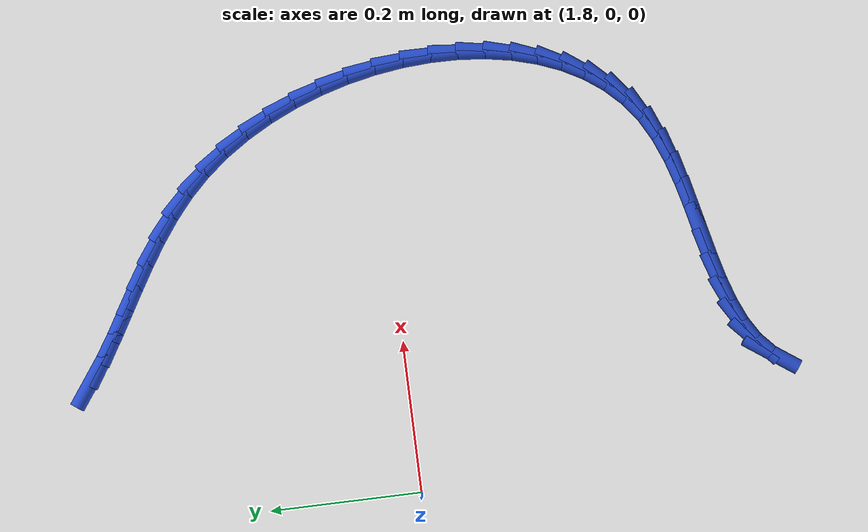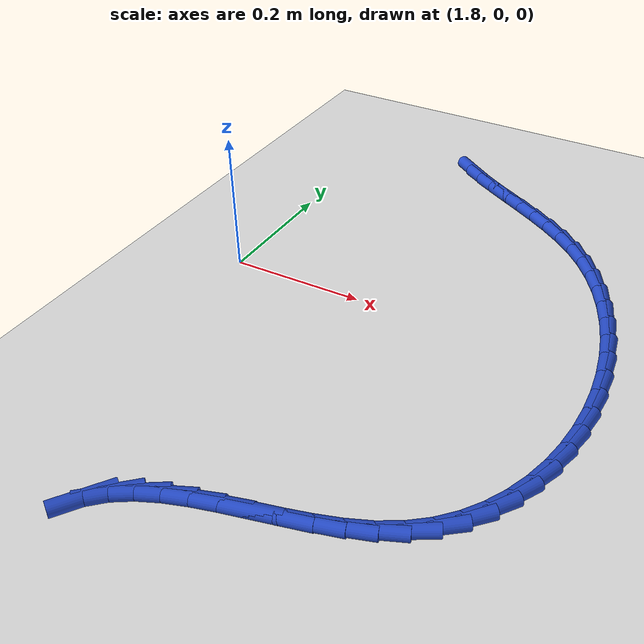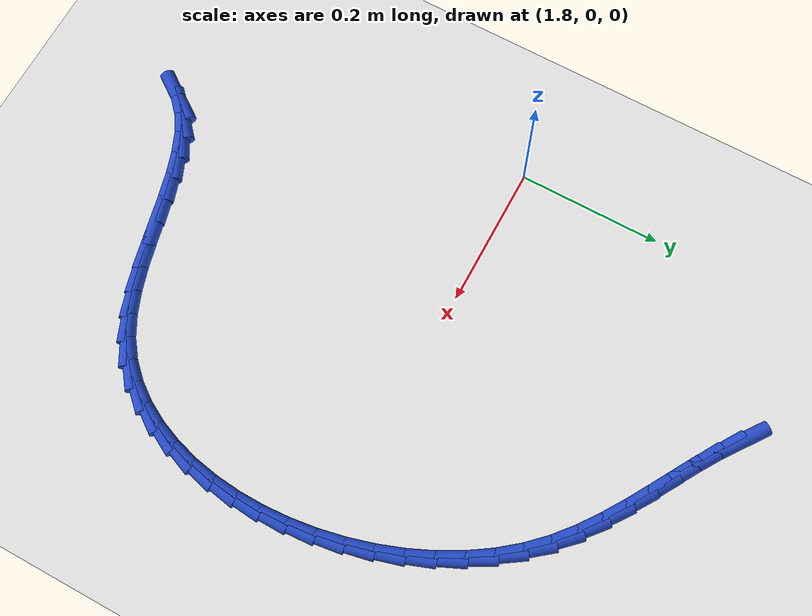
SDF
<sdf version="1.6">
 <world name="default">
  <model name="ground_plane">
   <static>1</static>
   <link name="link">
    <collision name="collision">
     <geometry><plane><normal>0 0 1</normal><size>100 100</size></plane></geometry>
     <surface><friction><ode><mu>100</mu><mu2>50</mu2></ode></friction></surface>
    </collision>
    <visual name="visual">
     <cast_shadows>0</cast_shadows>
     <geometry><plane><normal>0 0 1</normal><size>100 100</size></plane></geometry>
     <material>
      <script><uri>file://media/materials/scripts/gazebo.material</uri><name>Gazebo/WhiteGlow</name></script>
     </material>
    </visual>
   </link>
  </model>
  <model name="line">
   <link name="link_97">
    <pose>1.9995929350206556 0.4103591498873001 0.01 0 1.57 -0.6246618386399072</pose>
    <collision name="collision">
     <geometry><cylinder><radius>0.01</radius><length>0.08</length></cylinder></geometry>
    </collision>
    <visual name="visual">
     <material>
      <script><name>Gazebo/Blue</name><uri>file://media/materials/scripts/gazebo.material</uri></script>
     </material>
     <geometry><cylinder><radius>0.01</radius><length>0.08</length></cylinder></geometry>
    </visual>
   </link>
   <link name="link_98">
    <pose>2.0254250936199756 0.3917349287222821 0.01 0 1.57 -0.5689603426993792</pose>
    <collision name="collision">
     <geometry><cylinder><radius>0.01</radius><length>0.08</length></cylinder></geometry>
    </collision>
    <visual name="visual">
     <material>
      <script><name>Gazebo/Blue</name><uri>file://media/materials/scripts/gazebo.material</uri></script>
     </material>
     <geometry><cylinder><radius>0.01</radius><length>0.08</length></cylinder></geometry>
    </visual>
   </link>
   <link name="link_99">
    <pose>2.0531141852114367 0.37402767885989463 0.01 0 1.57 -0.5382901547867385</pose>
    <collision name="collision">
     <geometry><cylinder><radius>0.01</radius><length>0.08</length></cylinder></geometry>
    </collision>
    <visual name="visual">
     <material>
      <script><name>Gazebo/Blue</name><uri>file://media/materials/scripts/gazebo.material</uri></script>
     </material>
     <geometry><cylinder><radius>0.01</radius><length>0.08</length></cylinder></geometry>
    </visual>
   </link>
   <link name="link_100">
    <pose>2.082105095258075 0.3567169808959366 0.01 0 1.57 -0.5302701069086501</pose>
    <collision name="collision">
     <geometry><cylinder><radius>0.01</radius><length>0.08</length></cylinder></geometry>
    </collision>
    <visual name="visual">
     <material>
      <script><name>Gazebo/Blue</name><uri>file://media/materials/scripts/gazebo.material</uri></script>
     </material>
     <geometry><cylinder><radius>0.01</radius><length>0.08</length></cylinder></geometry>
    </visual>
   </link>
   <link name="link_101">
    <pose>2.111842709222932 0.3392824154262064 0.01 0 1.57 -0.5433949878678274</pose>
    <collision name="collision">
     <geometry><cylinder><radius>0.01</radius><length>0.08</length></cylinder></geometry>
    </collision>
    <visual name="visual">
     <material>
      <script><name>Gazebo/Blue</name><uri>file://media/materials/scripts/gazebo.material</uri></script>
     </material>
     <geometry><cylinder><radius>0.01</radius><length>0.08</length></cylinder></geometry>
    </visual>
   </link>
   <link name="link_102">
    <pose>2.141771912569044 0.3212035630465031 0.01 0 1.57 -0.5769900390581039</pose>
    <collision name="collision">
     <geometry><cylinder><radius>0.01</radius><length>0.08</length></cylinder></geometry>
    </collision>
    <visual name="visual">
     <material>
      <script><name>Gazebo/Blue</name><uri>file://media/materials/scripts/gazebo.material</uri></script>
     </material>
     <geometry><cylinder><radius>0.01</radius><length>0.08</length></cylinder></geometry>
    </visual>
   </link>
   <link name="link_103">
    <pose>2.1713375907594523 0.3019600043526247 0.01 0 1.57 -0.6309498987355044</pose>
    <collision name="collision">
     <geometry><cylinder><radius>0.01</radius><length>0.08</length></cylinder></geometry>
    </collision>
    <visual name="visual">
     <material>
      <script><name>Gazebo/Blue</name><uri>file://media/materials/scripts/gazebo.material</uri></script>
     </material>
     <geometry><cylinder><radius>0.01</radius><length>0.08</length></cylinder></geometry>
    </visual>
   </link>
   <link name="link_104">
    <pose>2.199984629257194 0.28103131994037056 0.01 0 1.57 -0.7052827057027453</pose>
    <collision name="collision">
     <geometry><cylinder><radius>0.01</radius><length>0.08</length></cylinder></geometry>
    </collision>
    <visual name="visual">
     <material>
      <script><name>Gazebo/Blue</name><uri>file://media/materials/scripts/gazebo.material</uri></script>
     </material>
     <geometry><cylinder><radius>0.01</radius><length>0.08</length></cylinder></geometry>
    </visual>
   </link>
   <link name="link_105">
    <pose>2.2271579135253097 0.2578970904055386 0.01 0 1.57 -0.7987666485888307</pose>
    <collision name="collision">
     <geometry><cylinder><radius>0.01</radius><length>0.08</length></cylinder></geometry>
    </collision>
    <visual name="visual">
     <material>
      <script><name>Gazebo/Blue</name><uri>file://media/materials/scripts/gazebo.material</uri></script>
     </material>
     <geometry><cylinder><radius>0.01</radius><length>0.08</length></cylinder></geometry>
    </visual>
   </link>
   <link name="link_106">
    <pose>2.2523145507452127 0.2320586861135479 0.01 0 1.57 -0.8967962599606125</pose>
    <collision name="collision">
     <geometry><cylinder><radius>0.01</radius><length>0.08</length></cylinder></geometry>
    </collision>
    <visual name="visual">
     <material>
      <script><name>Gazebo/Blue</name><uri>file://media/materials/scripts/gazebo.material</uri></script>
     </material>
     <geometry><cylinder><radius>0.01</radius><length>0.08</length></cylinder></geometry>
    </visual>
   </link>
   <link name="link_107">
    <pose>2.2751594085608002 0.20345920282655244 0.01 0 1.57 -0.9873280813577033</pose>
    <collision name="collision">
     <geometry><cylinder><radius>0.01</radius><length>0.08</length></cylinder></geometry>
    </collision>
    <visual name="visual">
     <material>
      <script><name>Gazebo/Blue</name><uri>file://media/materials/scripts/gazebo.material</uri></script>
     </material>
     <geometry><cylinder><radius>0.01</radius><length>0.08</length></cylinder></geometry>
    </visual>
   </link>
   <link name="link_108">
    <pose>2.295627897343454 0.17245276467153509 0.01 0 1.57 -1.0711579808825729</pose>
    <collision name="collision">
     <geometry><cylinder><radius>0.01</radius><length>0.08</length></cylinder></geometry>
    </collision>
    <visual name="visual">
     <material>
      <script><name>Gazebo/Blue</name><uri>file://media/materials/scripts/gazebo.material</uri></script>
     </material>
     <geometry><cylinder><radius>0.01</radius><length>0.08</length></cylinder></geometry>
    </visual>
   </link>
   <link name="link_109">
    <pose>2.313664200034842 0.13940913615268916 0.01 0 1.57 -1.149660901195988</pose>
    <collision name="collision">
     <geometry><cylinder><radius>0.01</radius><length>0.08</length></cylinder></geometry>
    </collision>
    <visual name="visual">
     <material>
      <script><name>Gazebo/Blue</name><uri>file://media/materials/scripts/gazebo.material</uri></script>
     </material>
     <geometry><cylinder><radius>0.01</radius><length>0.08</length></cylinder></geometry>
    </visual>
   </link>
   <link name="link_110">
    <pose>2.3292124995766357 0.10469808177420642 0.01 0 1.57 -1.2242247392856622</pose>
    <collision name="collision">
     <geometry><cylinder><radius>0.01</radius><length>0.08</length></cylinder></geometry>
    </collision>
    <visual name="visual">
     <material>
      <script><name>Gazebo/Blue</name><uri>file://media/materials/scripts/gazebo.material</uri></script>
     </material>
     <geometry><cylinder><radius>0.01</radius><length>0.08</length></cylinder></geometry>
    </visual>
   </link>
   <link name="link_111">
    <pose>2.3422169789105043 0.06868936604028038 0.01 0 1.57 -1.296216970208023</pose>
    <collision name="collision">
     <geometry><cylinder><radius>0.01</radius><length>0.08</length></cylinder></geometry>
    </collision>
    <visual name="visual">
     <material>
      <script><name>Gazebo/Blue</name><uri>file://media/materials/scripts/gazebo.material</uri></script>
     </material>
     <geometry><cylinder><radius>0.01</radius><length>0.08</length></cylinder></geometry>
    </visual>
   </link>
   <link name="link_112">
    <pose>2.352621820978116 0.0317527534551028 0.01 0 1.57 -1.3669866872005558</pose>
    <collision name="collision">
     <geometry><cylinder><radius>0.01</radius><length>0.08</length></cylinder></geometry>
    </collision>
    <visual name="visual">
     <material>
      <script><name>Gazebo/Blue</name><uri>file://media/materials/scripts/gazebo.material</uri></script>
     </material>
     <geometry><cylinder><radius>0.01</radius><length>0.08</length></cylinder></geometry>
    </visual>
   </link>
   <link name="link_113">
    <pose>2.360371208721142 -0.005741991477132936 0.01 0 1.57 -1.4378875693052435</pose>
    <collision name="collision">
     <geometry><cylinder><radius>0.01</radius><length>0.08</length></cylinder></geometry>
    </collision>
    <visual name="visual">
     <material>
      <script><name>Gazebo/Blue</name><uri>file://media/materials/scripts/gazebo.material</uri></script>
     </material>
     <geometry><cylinder><radius>0.01</radius><length>0.08</length></cylinder></geometry>
    </visual>
   </link>
   <link name="link_114">
    <pose>2.36540932508125 -0.04342510425223504 0.01 0 1.57 -1.5103122185883378</pose>
    <collision name="collision">
     <geometry><cylinder><radius>0.01</radius><length>0.08</length></cylinder></geometry>
    </collision>
    <visual name="visual">
     <material>
      <script><name>Gazebo/Blue</name><uri>file://media/materials/scripts/gazebo.material</uri></script>
     </material>
     <geometry><cylinder><radius>0.01</radius><length>0.08</length></cylinder></geometry>
    </visual>
   </link>
   <link name="link_115">
    <pose>2.3676803530001105 -0.08092682036601004 0.01 0 1.57 1.555861867732571</pose>
    <collision name="collision">
     <geometry><cylinder><radius>0.01</radius><length>0.08</length></cylinder></geometry>
    </collision>
    <visual name="visual">
     <material>
      <script><name>Gazebo/Blue</name><uri>file://media/materials/scripts/gazebo.material</uri></script>
     </material>
     <geometry><cylinder><radius>0.01</radius><length>0.08</length></cylinder></geometry>
    </visual>
   </link>
   <link name="link_116">
    <pose>2.3671284754193924 -0.11787737531426577 0.01 0 1.57 1.4758664357864577</pose>
    <collision name="collision">
     <geometry><cylinder><radius>0.01</radius><length>0.08</length></cylinder></geometry>
    </collision>
    <visual name="visual">
     <material>
      <script><name>Gazebo/Blue</name><uri>file://media/materials/scripts/gazebo.material</uri></script>
     </material>
     <geometry><cylinder><radius>0.01</radius><length>0.08</length></cylinder></geometry>
    </visual>
   </link>
   <link name="link_117">
    <pose>2.3636978752807667 -0.1539070045928106 0.01 0 1.57 1.3895786456298775</pose>
    <collision name="collision">
     <geometry><cylinder><radius>0.01</radius><length>0.08</length></cylinder></geometry>
    </collision>
    <visual name="visual">
     <material>
      <script><name>Gazebo/Blue</name><uri>file://media/materials/scripts/gazebo.material</uri></script>
     </material>
     <geometry><cylinder><radius>0.01</radius><length>0.08</length></cylinder></geometry>
    </visual>
   </link>
   <link name="link_118">
    <pose>2.357332735525902 -0.1886459436974501 0.01 0 1.57 1.295167854682481</pose>
    <collision name="collision">
     <geometry><cylinder><radius>0.01</radius><length>0.08</length></cylinder></geometry>
    </collision>
    <visual name="visual">
     <material>
      <script><name>Gazebo/Blue</name><uri>file://media/materials/scripts/gazebo.material</uri></script>
     </material>
     <geometry><cylinder><radius>0.01</radius><length>0.08</length></cylinder></geometry>
    </visual>
   </link>
   <link name="link_119">
    <pose>2.3479772390964673 -0.22172442812399254 0.01 0 1.57 1.1907797152027713</pose>
    <collision name="collision">
     <geometry><cylinder><radius>0.01</radius><length>0.08</length></cylinder></geometry>
    </collision>
    <visual name="visual">
     <material>
      <script><name>Gazebo/Blue</name><uri>file://media/materials/scripts/gazebo.material</uri></script>
     </material>
     <geometry><cylinder><radius>0.01</radius><length>0.08</length></cylinder></geometry>
    </visual>
   </link>
   <link name="link_120">
    <pose>2.3355755689341318 -0.2527726933682452 0.01 0 1.57 1.0747557519100366</pose>
    <collision name="collision">
     <geometry><cylinder><radius>0.01</radius><length>0.08</length></cylinder></geometry>
    </collision>
    <visual name="visual">
     <material>
      <script><name>Gazebo/Blue</name><uri>file://media/materials/scripts/gazebo.material</uri></script>
     </material>
     <geometry><cylinder><radius>0.01</radius><length>0.08</length></cylinder></geometry>
    </visual>
   </link>
   <link name="link_121">
    <pose>2.3200719079805663 -0.28142097492601575 0.01 0 1.57 0.9460375513856158</pose>
    <collision name="collision">
     <geometry><cylinder><radius>0.01</radius><length>0.08</length></cylinder></geometry>
    </collision>
    <visual name="visual">
     <material>
      <script><name>Gazebo/Blue</name><uri>file://media/materials/scripts/gazebo.material</uri></script>
     </material>
     <geometry><cylinder><radius>0.01</radius><length>0.08</length></cylinder></geometry>
    </visual>
   </link>
   <link name="link_122">
    <pose>2.301410439177439 -0.30729950829311203 0.01 0 1.57 0.8047601749936107</pose>
    <collision name="collision">
     <geometry><cylinder><radius>0.01</radius><length>0.08</length></cylinder></geometry>
    </collision>
    <visual name="visual">
     <material>
      <script><name>Gazebo/Blue</name><uri>file://media/materials/scripts/gazebo.material</uri></script>
     </material>
     <geometry><cylinder><radius>0.01</radius><length>0.08</length></cylinder></geometry>
    </visual>
   </link>
   <link name="link_123">
    <pose>2.279535345466421 -0.33003852896534025 0.01 0 1.57 0.6528922899570012</pose>
    <collision name="collision">
     <geometry><cylinder><radius>0.01</radius><length>0.08</length></cylinder></geometry>
    </collision>
    <visual name="visual">
     <material>
      <script><name>Gazebo/Blue</name><uri>file://media/materials/scripts/gazebo.material</uri></script>
     </material>
     <geometry><cylinder><radius>0.01</radius><length>0.08</length></cylinder></geometry>
    </visual>
   </link>
   <link name="link_124">
    <pose>2.2543909251001586 -0.34926843461686746 0.01 0 1.57 0.5036887386546584</pose>
    <collision name="collision">
     <geometry><cylinder><radius>0.01</radius><length>0.08</length></cylinder></geometry>
    </collision>
    <visual name="visual">
     <material>
      <script><name>Gazebo/Blue</name><uri>file://media/materials/scripts/gazebo.material</uri></script>
     </material>
     <geometry><cylinder><radius>0.01</radius><length>0.08</length></cylinder></geometry>
    </visual>
   </link>
   <link name="link_125">
    <pose>2.2260943339072874 -0.3648627373112233 0.01 0 1.57 0.3871837631674104</pose>
    <collision name="collision">
     <geometry><cylinder><radius>0.01</radius><length>0.08</length></cylinder></geometry>
    </collision>
    <visual name="visual">
     <material>
      <script><name>Gazebo/Blue</name><uri>file://media/materials/scripts/gazebo.material</uri></script>
     </material>
     <geometry><cylinder><radius>0.01</radius><length>0.08</length></cylinder></geometry>
    </visual>
   </link>
   <link name="link_126">
    <pose>2.195282938496999 -0.3774265961082143 0.01 0 1.57 0.30542234466384693</pose>
    <collision name="collision">
     <geometry><cylinder><radius>0.01</radius><length>0.08</length></cylinder></geometry>
    </collision>
    <visual name="visual">
     <material>
      <script><name>Gazebo/Blue</name><uri>file://media/materials/scripts/gazebo.material</uri></script>
     </material>
     <geometry><cylinder><radius>0.01</radius><length>0.08</length></cylinder></geometry>
    </visual>
   </link>
   <link name="link_127">
    <pose>2.1626915691756885 -0.3877022472370741 0.01 0 1.57 0.2539276427838225</pose>
    <collision name="collision">
     <geometry><cylinder><radius>0.01</radius><length>0.08</length></cylinder></geometry>
    </collision>
    <visual name="visual">
     <material>
      <script><name>Gazebo/Blue</name><uri>file://media/materials/scripts/gazebo.material</uri></script>
     </material>
     <geometry><cylinder><radius>0.01</radius><length>0.08</length></cylinder></geometry>
    </visual>
   </link>
   <link name="link_128">
    <pose>2.129055056249752 -0.39643192692703805 0.01 0 1.57 0.22937212579566116</pose>
    <collision name="collision">
     <geometry><cylinder><radius>0.01</radius><length>0.08</length></cylinder></geometry>
    </collision>
    <visual name="visual">
     <material>
      <script><name>Gazebo/Blue</name><uri>file://media/materials/scripts/gazebo.material</uri></script>
     </material>
     <geometry><cylinder><radius>0.01</radius><length>0.08</length></cylinder></geometry>
    </visual>
   </link>
   <link name="link_129">
    <pose>2.095108230025584 -0.4043578714073404 0.01 0 1.57 0.23043602049265946</pose>
    <collision name="collision">
     <geometry><cylinder><radius>0.01</radius><length>0.08</length></cylinder></geometry>
    </collision>
    <visual name="visual">
     <material>
      <script><name>Gazebo/Blue</name><uri>file://media/materials/scripts/gazebo.material</uri></script>
     </material>
     <geometry><cylinder><radius>0.01</radius><length>0.08</length></cylinder></geometry>
    </visual>
   </link>
   <link name="link_130">
    <pose>2.0615859208095797 -0.4122223169072157 0.01 0 1.57 0.25815042459595045</pose>
    <collision name="collision">
     <geometry><cylinder><radius>0.01</radius><length>0.08</length></cylinder></geometry>
    </collision>
    <visual name="visual">
     <material>
      <script><name>Gazebo/Blue</name><uri>file://media/materials/scripts/gazebo.material</uri></script>
     </material>
     <geometry><cylinder><radius>0.01</radius><length>0.08</length></cylinder></geometry>
    </visual>
   </link>
   <link name="link_131">
    <pose>2.0292229589081328 -0.4207674996558988 0.01 0 1.57 0.31618396989032127</pose>
    <collision name="collision">
     <geometry><cylinder><radius>0.01</radius><length>0.08</length></cylinder></geometry>
    </collision>
    <visual name="visual">
     <material>
      <script><name>Gazebo/Blue</name><uri>file://media/materials/scripts/gazebo.material</uri></script>
     </material>
     <geometry><cylinder><radius>0.01</radius><length>0.08</length></cylinder></geometry>
    </visual>
   </link>
   <link name="link_132">
    <pose>1.998754174627641 -0.43073565588262375 0.01 0 1.57 0.4110065555132965</pose>
    <collision name="collision">
     <geometry><cylinder><radius>0.01</radius><length>0.08</length></cylinder></geometry>
    </collision>
    <visual name="visual">
     <material>
      <script><name>Gazebo/Blue</name><uri>file://media/materials/scripts/gazebo.material</uri></script>
     </material>
     <geometry><cylinder><radius>0.01</radius><length>0.08</length></cylinder></geometry>
    </visual>
   </link>
   <link name="link_133">
    <pose>1.9709143982744974 -0.44286902181662524 0.01 0 1.57 0.5510234159259574</pose>
    <collision name="collision">
     <geometry><cylinder><radius>0.01</radius><length>0.08</length></cylinder></geometry>
    </collision>
    <visual name="visual">
     <material>
      <script><name>Gazebo/Blue</name><uri>file://media/materials/scripts/gazebo.material</uri></script>
     </material>
     <geometry><cylinder><radius>0.01</radius><length>0.08</length></cylinder></geometry>
    </visual>
   </link>
   <link name="link_134">
    <pose>1.9464384601550981 -0.4579098336871378 0.01 0 1.57 0.7419066744642209</pose>
    <collision name="collision">
     <geometry><cylinder><radius>0.01</radius><length>0.08</length></cylinder></geometry>
    </collision>
    <visual name="visual">
     <material>
      <script><name>Gazebo/Blue</name><uri>file://media/materials/scripts/gazebo.material</uri></script>
     </material>
     <geometry><cylinder><radius>0.01</radius><length>0.08</length></cylinder></geometry>
    </visual>
   </link>
   <link name="link_135">
    <pose>1.9260543932427459 -0.4765937056544986 0.01 0 1.57 0.9548188887235508</pose>
    <collision name="collision">
     <geometry><cylinder><radius>0.01</radius><length>0.08</length></cylinder></geometry>
    </collision>
    <visual name="visual">
     <material>
      <script><name>Gazebo/Blue</name><uri>file://media/materials/scripts/gazebo.material</uri></script>
     </material>
     <geometry><cylinder><radius>0.01</radius><length>0.08</length></cylinder></geometry>
    </visual>
   </link>
  </model>
 </world>
</sdf>
